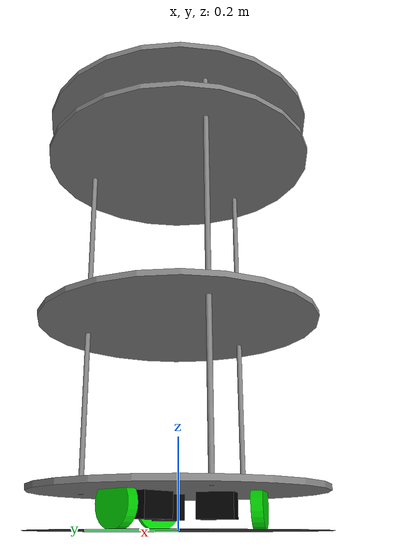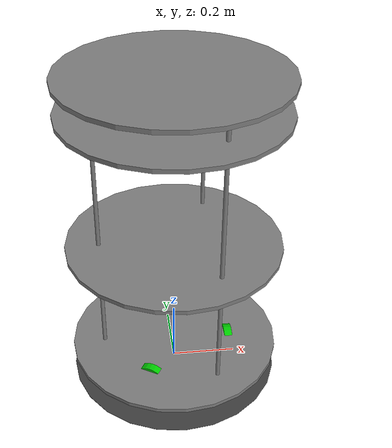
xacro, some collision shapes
<?xml version="1.0"?>
<!-- Writen by James Anderson 3/13/12-->
<robot name="jomegatron"
    xmlns:sensor="http://playerstage.sourceforge.net/gazebo/xmlschema/#sensor"
    xmlns:controller="http://playerstage.sourceforge.net/gazebo/xmlschema/#controller"
    xmlns:interface="http://playerstage.sourceforge.net/gazebo/xmlschema/#interface" >

    <!-- all values are in inches -->
    <property name="pi" value="3.1415"/>
    <property name="in_m" value="0.0254"/>
    <property name="cos_2_3_pi" value="-0.5"/>
    <property name="sin_2_3_pi" value="0.866025"/>
    <property name="cos_4_3_pi" value="-0.5"/>
    <property name="sin_4_3_pi" value="-0.866025"/>
    <property name="cos_1_3_pi" value="0.5"/>
    <property name="sin_1_3_pi" value="0.866"/>
    <property name="cos_pi" value="-1"/>
    <property name="sin_pi" value="0"/>
    <property name="cos_5_3_pi" value="0.5"/>
    <property name="sin_5_3_pi" value="-0.866"/>

    <property name="base_radius" value="13"/>
    <property name="base_height" value=".5"/>
    <property name="platform_1_height" value="15"/>
    <property name="platform_2_height" value="32"/>
    <property name="platform_3_height" value="36"/>

    <property name="motor_height" value="0.0564 "/>
    <property name="motor_width" value="0.0564 "/>
    <property name="motor_length" value="0.082 "/>
    <property name="motor_placement_radius" value="5"/>

    <property name="laptop_height" value="13"/>
    <property name="laptop_width" value="16"/>
    <property name="laptop_length" value="12"/>

    <property name="wheel_radius" value="2"/>
    <property name="wheel_width" value="1"/>
    <property name="wheel_axil_offset" value="2"/>

    <property name="rod_height" value="36"/>
    <property name="rod_radius" value="0.25"/>
    <property name="rod_placement_radius" value="9"/>

    <property name="kinect_base_height" value="1"/>
    <property name="kinect_joint_height" value="1"/>
    <property name="kinect_joint_setback" value="1"/>
    <property name="kinect_placement_radius" value="4.5"/>

    <material name="Green">
        <color rgba="0.0 0.8 0.0 1.0"/>
    </material>

    <material name="Black">
        <color rgba="0 0 0 1"/>
    </material>

    <material name="Grey">
        <color rgba="0.5 0.5 0.5 1"/>
    </material>

    <material name="Shadow">
        <color rgba="0.25 0.25 0.25 1"/>
    </material>

    <!-- robot footprint -->
    <link name="base_footprint">
        <inertial>
          <mass value="0.0001" />
          <origin xyz="0 0 0" />
          <inertia ixx="0.0001" ixy="0.0" ixz="0.0"
                  iyy="0.0001" iyz="0.0"
                  izz="0.0001" />
        </inertial>

        <visual>
            <origin xyz="0 0 0" rpy="0 0 0" />
            <geometry>
                <cylinder radius="${base_radius*in_m}" length = ".001"/>
            </geometry>
            <material name="Shadow" />
        </visual>

        <collision>
            <origin xyz="0 0 0" rpy="0 0 0" />
            <geometry>
                <cylinder radius="${base_radius*in_m}" length = ".001"/>
            </geometry>
        </collision>
    </link>

    <!-- robot base -->
    <link name="base_link">
        <inertial>
          <mass value="5" />
          <origin xyz="0 0 0" />
          <inertia ixx="0.0001" ixy="0.0" ixz="0.0"
                  iyy="0.0001" iyz="0.0"
                  izz="0.0001" />
        </inertial>

        <visual>
            <origin xyz="0 0 ${(base_height/2)*in_m}" rpy="0 0 0" />
            <geometry>
                <cylinder radius="${base_radius*in_m}" length = "${base_height*in_m}"/>
            </geometry>
            <material name="Grey" />
        </visual>

        <collision>
            <origin xyz="0 0 ${(base_height/2)*in_m}" rpy="0 0 0" />
            <geometry>
                <cylinder radius="${base_radius*in_m}" length = "${base_height*in_m}"/>
            </geometry>
        </collision>
    </link>

    <joint name="base_footprint_joint" type="fixed">
        <origin xyz="0 0 ${motor_height/2 + wheel_radius * in_m}" rpy="0 0 0" />
        <parent link="base_footprint"/>
        <child link="base_link" />
    </joint>

    <!-- platform 1 -->
    <link name="platform_1_link">
        <inertial>
          <mass value="5" />
          <origin xyz="0 0 0" />
          <inertia ixx="0.0001" ixy="0.0" ixz="0.0"
                  iyy="0.0001" iyz="0.0"
                  izz="0.0001" />
        </inertial>

        <visual>
            <origin xyz="0 0 ${(base_height/2)*in_m}" rpy="0 0 0" />
            <geometry>
                <cylinder radius="${base_radius*in_m}" length = "${base_height*in_m}"/>
            </geometry>
            <material name="Grey" />
        </visual>

        <collision>
            <origin xyz="0 0 ${(base_height/2)*in_m}" rpy="0 0 0" />
            <geometry>
                <cylinder radius="${base_radius*in_m}" length = "${base_height*in_m}"/>
            </geometry>
        </collision>
    </link>

    <joint name="platform_1_joint" type="fixed">
        <origin xyz="0 0 ${platform_1_height*in_m}" rpy="0 0 0" />
        <parent link="base_link"/>
        <child link="platform_1_link" />
    </joint>

    <!-- laptop -->

    <!-- platform 2 -->
    <link name="platform_2_link">
        <inertial>
          <mass value="5" />
          <origin xyz="0 0 0" />
          <inertia ixx="0.0001" ixy="0.0" ixz="0.0"
                  iyy="0.0001" iyz="0.0"
                  izz="0.0001" />
        </inertial>

        <visual>
            <origin xyz="0 0 ${(base_height/2)*in_m}" rpy="0 0 0" />
            <geometry>
                <cylinder radius="${base_radius*in_m}" length = "${base_height*in_m}"/>
            </geometry>
            <material name="Grey" />
        </visual>

        <collision>
            <origin xyz="0 0 ${(base_height/2)*in_m}" rpy="0 0 0" />
            <geometry>
                <cylinder radius="${base_radius*in_m}" length = "${base_height*in_m}"/>
            </geometry>
        </collision>
    </link>

    <joint name="platform_2_joint" type="fixed">
        <origin xyz="0 0 ${platform_2_height*in_m}" rpy="0 0 0" />
        <parent link="base_link"/>
        <child link="platform_2_link" />
    </joint>

    <!-- kinect -->
    <link name="kinect_link">
        <inertial>
            <mass value="0.01" />
            <origin xyz="0 0 0" />
            <inertia ixx="0.001" ixy="0.0" ixz="0.0"
                     iyy="0.001" iyz="0.0"
                     izz="0.001" />
        </inertial>

        <visual>
            <origin xyz=" ${kinect_joint_setback * in_m} 0 ${kinect_joint_height * in_m} " rpy="0 0 0" />
            <geometry>
                <mesh filename="package://turtlebot_360_description/meshes/kinect.dae"/>
            </geometry>
        </visual>

        <collision>
            <origin xyz="0 0.0 ${kinect_joint_height * in_m}" rpy="0 0 0" />
            <geometry>
                <box size="0.0730 .2760 0.0720"/>
            </geometry>
        </collision>

    </link>

    <joint name="base_kinect_joint" type="continuous">
        <origin xyz="${(kinect_placement_radius) * in_m} 0 ${(kinect_base_height + base_height)* in_m}"
                rpy="0 0 0" />
        <parent link="platform_2_link" />
        <child link="kinect_link" />
        <axis xyz="0 1 0"/>
    </joint>

    <joint name="kinect_depth_joint" type="fixed">
        <origin xyz="${kinect_joint_setback * in_m} 0.018 ${kinect_joint_height * in_m}" rpy="0 0 0" />
        <parent link="kinect_link" />
        <child link="kinect_depth_frame" />
    </joint>

    <link name="kinect_depth_frame">
        <inertial>
            <mass value="0.01" />
            <origin xyz="0 0 0" />
            <inertia ixx="0.001" ixy="0.0" ixz="0.0"
                     iyy="0.001" iyz="0.0"
                     izz="0.001" />
        </inertial>
    </link>

    <joint name="kinect_depth_optical_joint" type="fixed">
        <origin xyz="0 0 0" rpy="${-pi/2} 0 ${-pi/2}" />
        <parent link="kinect_depth_frame" />
        <child link="kinect_depth_optical_frame" />
    </joint>

    <link name="kinect_depth_optical_frame">
        <inertial>
            <mass value="0.001" />
            <origin xyz="0 0 0" />
            <inertia ixx="0.0001" ixy="0.0" ixz="0.0"
                     iyy="0.0001" iyz="0.0"
                     izz="0.0001" />
        </inertial>
    </link>

    <joint name="kinect_rgb_joint" type="fixed">
        <origin xyz="${kinect_joint_setback * in_m} -0.005 ${kinect_joint_height * in_m}" rpy="0 0 0" />
        <parent link="kinect_link" />
        <child link="kinect_rgb_frame" />
    </joint>

    <link name="kinect_rgb_frame">
        <inertial>
            <mass value="0.001" />
            <origin xyz="0 0 0" />
            <inertia ixx="0.0001" ixy="0.0" ixz="0.0"
                     iyy="0.0001" iyz="0.0"
                     izz="0.0001" />
        </inertial>
    </link>

    <joint name="kinect_rgb_optical_joint" type="fixed">
        <origin xyz="0 0 0" rpy="${-pi/2} 0 ${-pi/2}" />
        <parent link="kinect_rgb_frame" />
        <child link="kinect_rgb_optical_frame" />
    </joint>

    <link name="kinect_rgb_optical_frame">
        <inertial>
            <mass value="0.001" />
            <origin xyz="0 0 0" />
            <inertia ixx="0.0001" ixy="0.0" ixz="0.0"
                     iyy="0.0001" iyz="0.0"
                     izz="0.0001" />
        </inertial>
    </link>

    <!-- platform 3 -->
    <link name="platform_3_link">
        <inertial>
          <mass value="5" />
          <origin xyz="0 0 0" />
          <inertia ixx="0.0001" ixy="0.0" ixz="0.0"
                  iyy="0.0001" iyz="0.0"
                  izz="0.0001" />
        </inertial>

        <visual>
            <origin xyz="0 0 ${(base_height/2)*in_m}" rpy="0 0 0" />
            <geometry>
                <cylinder radius="${base_radius*in_m}" length = "${base_height*in_m}"/>
            </geometry>
            <material name="Grey" />
        </visual>

        <collision>
            <origin xyz="0 0 ${(base_height/2)*in_m}" rpy="0 0 0" />
            <geometry>
                <cylinder radius="${base_radius*in_m}" length = "${base_height*in_m}"/>
            </geometry>
        </collision>
    </link>

    <joint name="platform_3_joint" type="fixed">
        <origin xyz="0 0 ${platform_3_height*in_m}" rpy="0 0 0" />
        <parent link="base_link"/>
        <child link="platform_3_link" />
    </joint>

    <!-- motor 0 -->
    <link name="motor_0_link">
        <inertial>
          <mass value="2" />
          <origin xyz="0 0 0" />
          <inertia ixx="0.0001" ixy="0.0" ixz="0.0"
                  iyy="0.0001" iyz="0.0"
                  izz="0.0001" />
        </inertial>

        <visual>
            <origin xyz="${-motor_length/2 } 0 0" rpy="0 0 0" />
            <geometry>
                <box size="${motor_length } ${motor_width} ${motor_height}" />
            </geometry>
            <material name="Black" />
        </visual>

        <collision>
            <origin xyz="${-motor_length/2 } 0 0" rpy="0 0 0" />
            <geometry>
                <box size="${motor_length } ${motor_width} ${motor_height}" />
            </geometry>
        </collision>
    </link>

    <joint name="motor_0_joint" type="fixed">
        <origin xyz="${motor_placement_radius * in_m} 0 ${-motor_height/2 }" rpy="0 0 0" />
        <parent link="base_link"/>
        <child link="motor_0_link" />
    </joint>

    <!-- wheel 0 -->
    <link name="wheel_0_link">
        <inertial>
            <origin xyz="0 0 0"/>
            <mass value=".5" />
            <inertia ixx="0.001" ixy="0.0" ixz="0.0"
            iyy="0.001" iyz="0.0" izz="0.001" />
        </inertial>

        <visual>
            <origin xyz="0 0 0" rpy="0 ${pi/2} 0" />
            <geometry>
                <cylinder radius="${wheel_radius*in_m}" length = "${wheel_width*in_m}"/>
            </geometry>
            <material name="Green" />
        </visual>

        <collision>
            <origin xyz="0 0 0" rpy="0 ${pi/2} 0" />
            <geometry>
                <cylinder radius="${wheel_radius*in_m}" length = "${wheel_width*in_m}"/>
            </geometry>
        </collision>
    </link>

    <joint name="wheel_0_joint" type="continuous">
        <origin xyz="${wheel_axil_offset * in_m} 0 0" rpy="0 0 0"/>
        <parent link="motor_0_link"/>
        <child link="wheel_0_link"/>
        <axis xyz="1 0 0"/>
    </joint>

    <!-- motor 1 -->
    <link name="motor_1_link">
        <inertial>
          <mass value="2" />
          <origin xyz="0 0 0" />
          <inertia ixx="0.0001" ixy="0.0" ixz="0.0"
                  iyy="0.0001" iyz="0.0"
                  izz="0.0001" />
        </inertial>

        <visual>
            <origin xyz="${-motor_length/2 } 0 0" rpy="0 0 0" />
            <geometry>
                <box size="${motor_length } ${motor_width} ${motor_height}" />
            </geometry>
            <material name="Black" />
        </visual>

        <collision>
            <origin xyz="${-motor_length/2 } 0 0" rpy="0 0 0" />
            <geometry>
                <box size="${motor_length } ${motor_width} ${motor_height}" />
            </geometry>
        </collision>
    </link>

    <joint name="motor_1_joint" type="fixed">
        <origin xyz="${motor_placement_radius * cos_2_3_pi * in_m} ${motor_placement_radius * sin_2_3_pi *in_m} ${-motor_height/2 }" rpy="0 0 ${(2*pi)/3}" />
        <parent link="base_link"/>
        <child link="motor_1_link" />
    </joint>

    <!-- wheel 1 -->
    <link name="wheel_1_link">
        <inertial>
            <origin xyz="0 0 0"/>
            <mass value=".5" />
            <inertia ixx="0.001" ixy="0.0" ixz="0.0"
            iyy="0.001" iyz="0.0" izz="0.001" />
        </inertial>

        <visual>
            <origin xyz="0 0 0" rpy="0 ${pi/2} 0" />
            <geometry>
                <cylinder radius="${wheel_radius*in_m}" length = "${wheel_width*in_m}"/>
            </geometry>
            <material name="Green" />
        </visual>

        <collision>
            <origin xyz="0 0 0" rpy="0 ${pi/2} 0" />
            <geometry>
                <cylinder radius="${wheel_radius*in_m}" length = "${wheel_width*in_m}"/>
            </geometry>
        </collision>
    </link>

    <joint name="wheel_1_joint" type="continuous">
        <origin xyz="${wheel_axil_offset * in_m} 0 0" rpy="0 0 0"/>
        <parent link="motor_1_link"/>
        <child link="wheel_1_link"/>
        <axis xyz="1 0 0"/>
    </joint>

    <!-- motor 2 -->
    <link name="motor_2_link">
        <inertial>
          <mass value="2" />
          <origin xyz="0 0 0" />
          <inertia ixx="0.0001" ixy="0.0" ixz="0.0"
                  iyy="0.0001" iyz="0.0"
                  izz="0.0001" />
        </inertial>

        <visual>
            <origin xyz="${-motor_length/2 } 0 0" rpy="0 0 0" />
            <geometry>
                <box size="${motor_length } ${motor_width} ${motor_height}" />
            </geometry>
            <material name="Black" />
        </visual>

        <collision>
            <origin xyz="${-motor_length/2 } 0 0" rpy="0 0 0" />
            <geometry>
                <box size="${motor_length } ${motor_width} ${motor_height}" />
            </geometry>
        </collision>
    </link>

    <joint name="motor_2_joint" type="fixed">
        <origin xyz="${motor_placement_radius * cos_4_3_pi * in_m} ${motor_placement_radius * sin_4_3_pi *in_m} ${-motor_height/2 }" rpy="0 0 ${(4*pi)/3}" />
        <parent link="base_link"/>
        <child link="motor_2_link" />
    </joint>

    <!-- wheel 2 -->
    <link name="wheel_2_link">
        <inertial>
            <origin xyz="0 0 0"/>
            <mass value=".5" />
            <inertia ixx="0.001" ixy="0.0" ixz="0.0"
            iyy="0.001" iyz="0.0" izz="0.001" />
        </inertial>

        <visual>
            <origin xyz="0 0 0" rpy="0 ${pi/2} 0" />
            <geometry>
                <cylinder radius="${wheel_radius*in_m}" length = "${wheel_width*in_m}"/>
            </geometry>
            <material name="Green" />
        </visual>

        <collision>
            <origin xyz="0 0 0" rpy="0 ${pi/2} 0" />
            <geometry>
                <cylinder radius="${wheel_radius*in_m}" length = "${wheel_width*in_m}"/>
            </geometry>
        </collision>
    </link>

    <joint name="wheel_2_joint" type="continuous">
        <origin xyz="${wheel_axil_offset * in_m} 0 0" rpy="0 0 0"/>
        <parent link="motor_2_link"/>
        <child link="wheel_2_link"/>
        <axis xyz="1 0 0"/>
    </joint>

    <!-- rod 0 -->
    <link name="rod_0_link">
        <inertial>
            <origin xyz="0 0 0"/>
            <mass value=".5" />
            <inertia ixx="0.001" ixy="0.0" ixz="0.0"
            iyy="0.001" iyz="0.0" izz="0.001" />
        </inertial>

        <visual>
            <origin xyz="0 0 ${rod_height/2 * in_m}" rpy="0 0 0" />
            <geometry>
                <cylinder radius="${rod_radius*in_m}" length = "${rod_height*in_m}"/>
            </geometry>
            <material name="Grey" />
        </visual>

        <collision>
            <origin xyz="0 0 ${rod_height/2 * in_m}" rpy="0 0 0" />
            <geometry>
                <cylinder radius="${rod_radius*in_m}" length = "${rod_height*in_m}"/>
            </geometry>
        </collision>
    </link>

    <joint name="rod_0_joint" type="fixed">
        <origin xyz="${rod_placement_radius * cos_1_3_pi * in_m} ${rod_placement_radius * sin_1_3_pi * in_m} 0" rpy="0 0 0"/>
        <parent link="base_link"/>
        <child link="rod_0_link"/>
        <axis xyz="0 0 1"/>
    </joint>

    <!-- rod 1 -->
    <link name="rod_1_link">
        <inertial>
            <origin xyz="0 0 0"/>
            <mass value=".5" />
            <inertia ixx="0.001" ixy="0.0" ixz="0.0"
            iyy="0.001" iyz="0.0" izz="0.001" />
        </inertial>

        <visual>
            <origin xyz="0 0 ${rod_height/2 * in_m}" rpy="0 0 0" />
            <geometry>
                <cylinder radius="${rod_radius*in_m}" length = "${rod_height*in_m}"/>
            </geometry>
            <material name="Grey" />
        </visual>

        <collision>
            <origin xyz="0 0 ${rod_height/2 * in_m}" rpy="0 0 0" />
            <geometry>
                <cylinder radius="${rod_radius*in_m}" length = "${rod_height*in_m}"/>
            </geometry>
        </collision>
    </link>

    <joint name="rod_1_joint" type="fixed">
        <origin xyz="${-rod_placement_radius * in_m} 0 0" rpy="0 0 0"/>
        <parent link="base_link"/>
        <child link="rod_1_link"/>
        <axis xyz="0 0 1"/>
    </joint>

    <!-- rod 2 -->
    <link name="rod_2_link">
        <inertial>
            <origin xyz="0 0 0"/>
            <mass value=".5" />
            <inertia ixx="0.001" ixy="0.0" ixz="0.0"
            iyy="0.001" iyz="0.0" izz="0.001" />
        </inertial>

        <visual>
            <origin xyz="0 0 ${rod_height/2 * in_m}" rpy="0 0 0" />
            <geometry>
                <cylinder radius="${rod_radius*in_m}" length = "${rod_height*in_m}"/>
            </geometry>
            <material name="Grey" />
        </visual>

        <collision>
            <origin xyz="0 0 ${rod_height/2 * in_m}" rpy="0 0 0" />
            <geometry>
                <cylinder radius="${rod_radius*in_m}" length = "${rod_height*in_m}"/>
            </geometry>
        </collision>
    </link>

    <joint name="rod_2_joint" type="fixed">
        <origin xyz="${rod_placement_radius * cos_5_3_pi * in_m} ${rod_placement_radius * sin_5_3_pi * in_m} 0" rpy="0 0 0"/>
        <parent link="base_link"/>
        <child link="rod_2_link"/>
        <axis xyz="0 0 1"/>
    </joint>

</robot>
